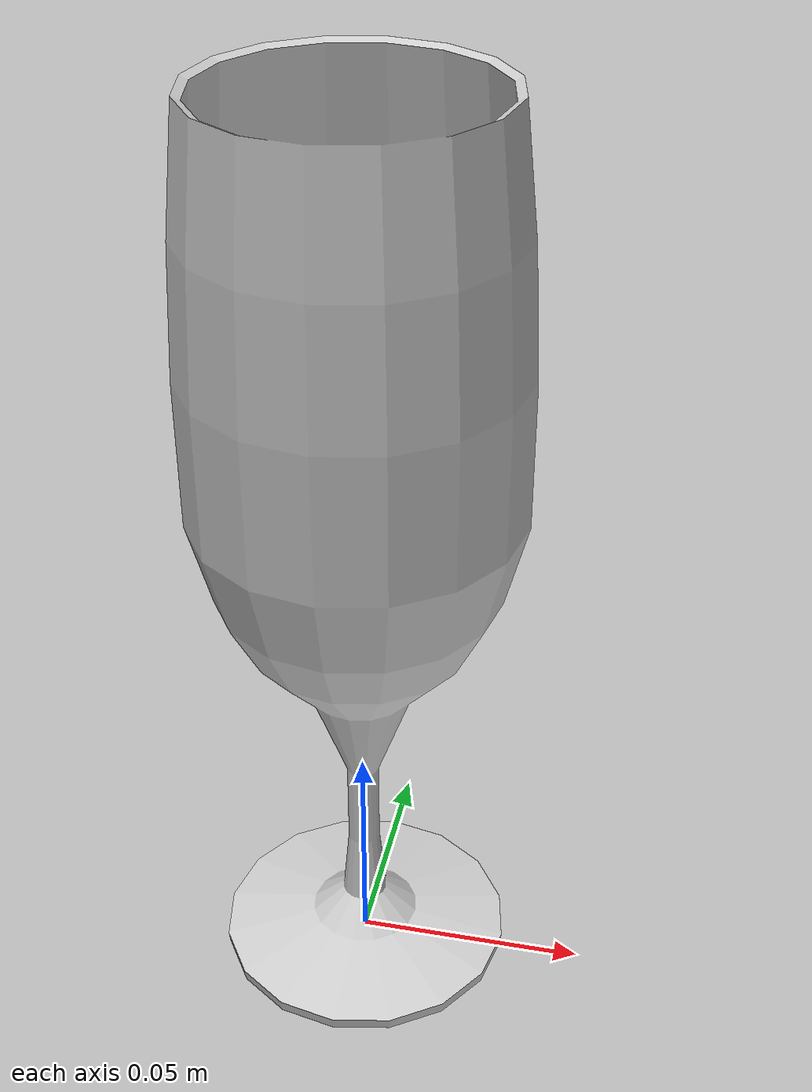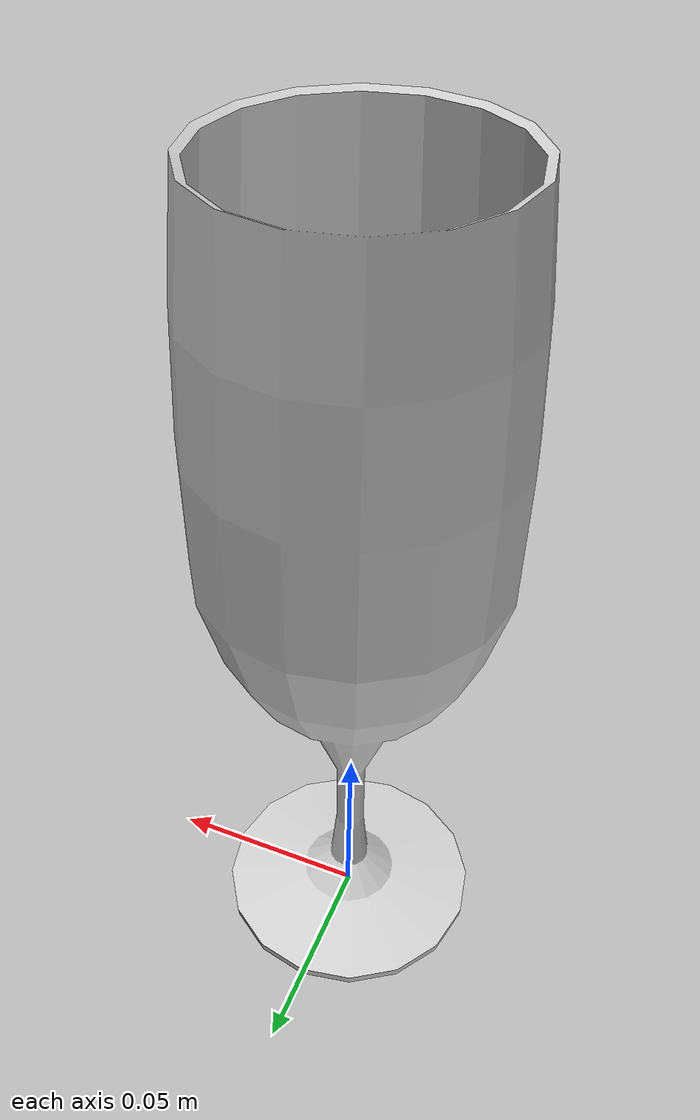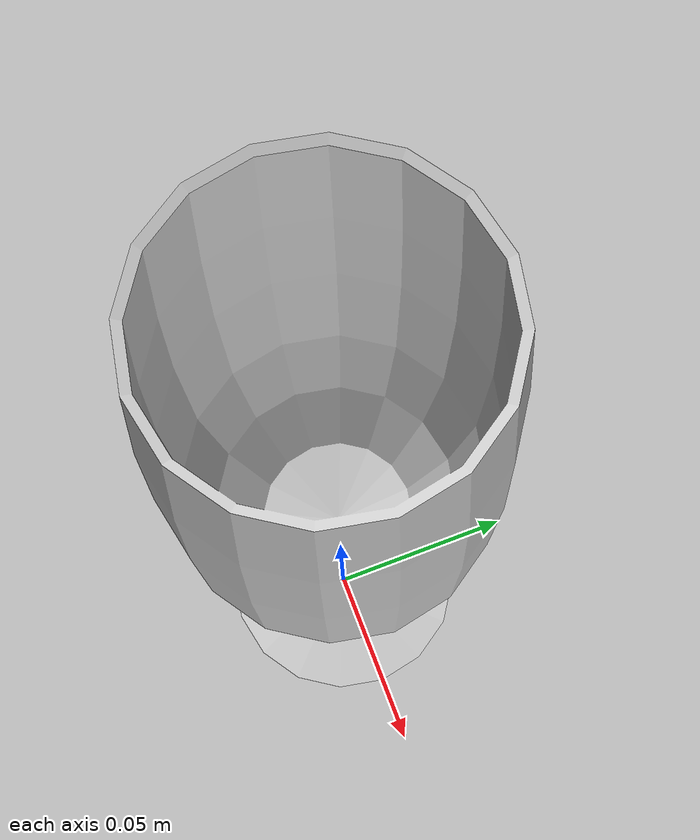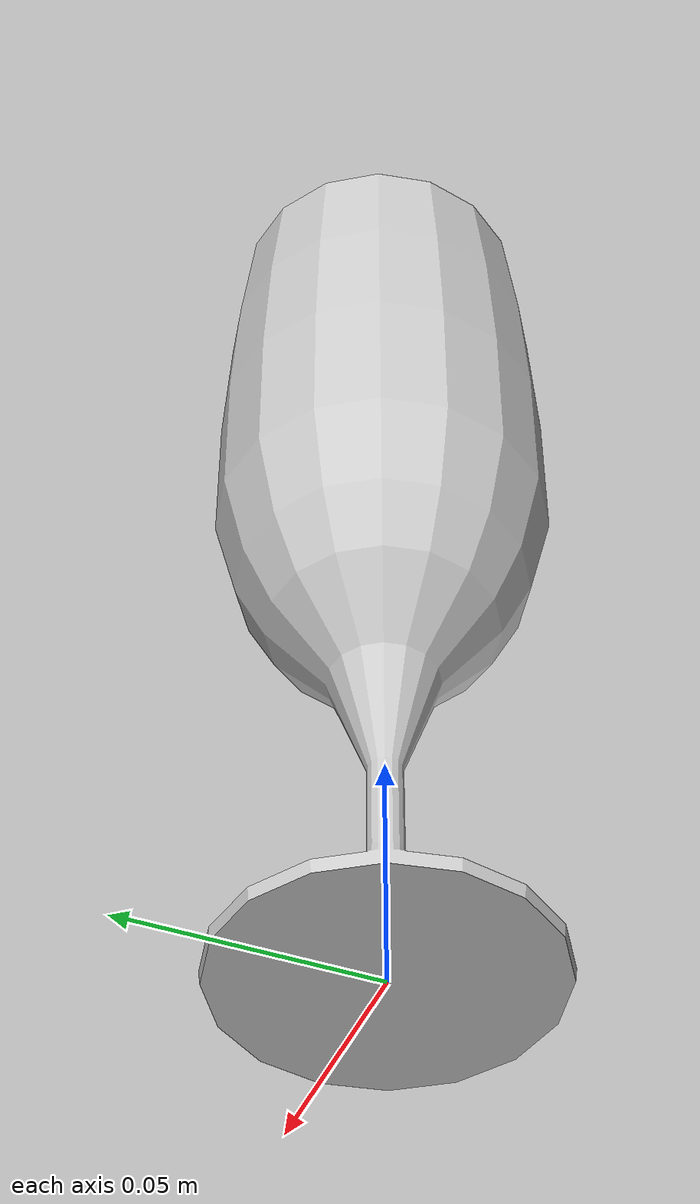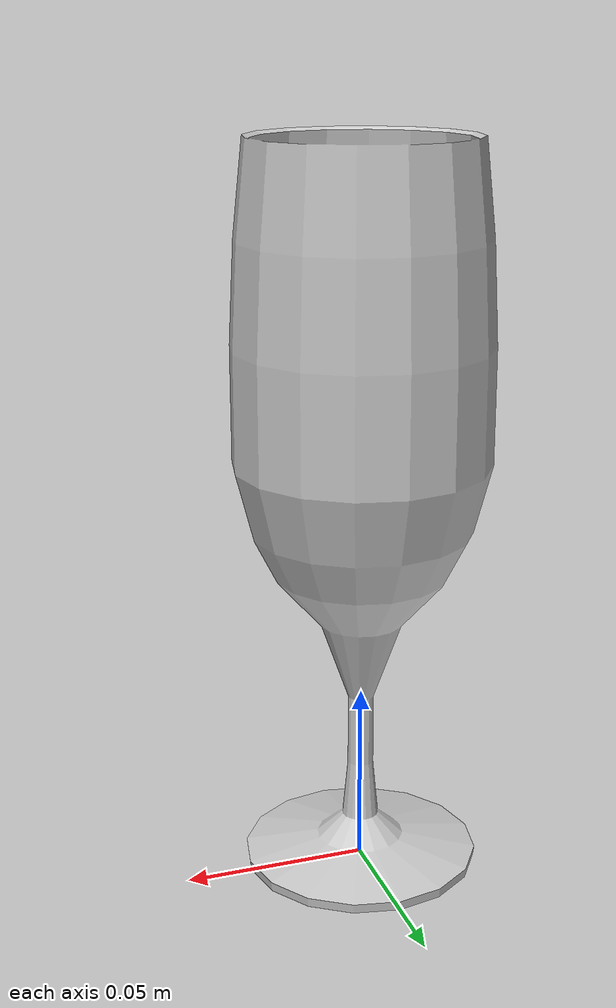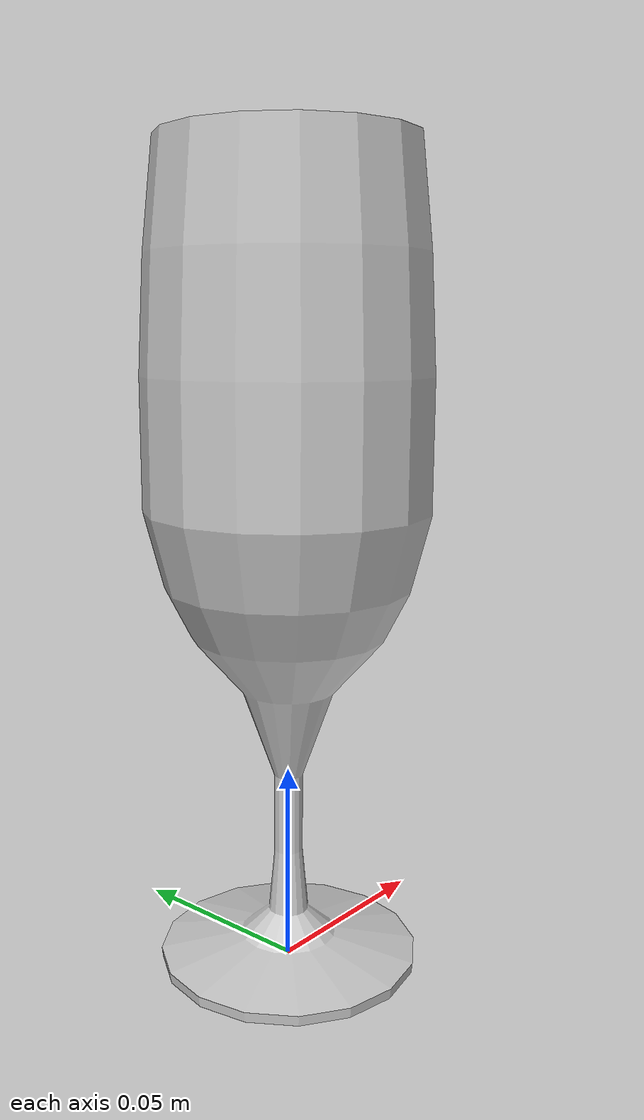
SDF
<?xml version='1.0'?>
<sdf version="1.4">
	<model name="wine_glass">
		<static>1</static>
		<link name="link">
			<visual name="mesh">
				<geometry>
					<mesh>
						<uri>model://meshes/wine_glass.dae</uri>
					</mesh>
				</geometry>
			</visual>
			<collision name="collider">
				<pose>0 0 0.1 0 0 0</pose>
				<geometry>
					<cylinder>
						<radius>0.035</radius>
						<length>0.2</length>
					</cylinder>
				</geometry>
			</collision>
		</link>
	</model>
</sdf>
